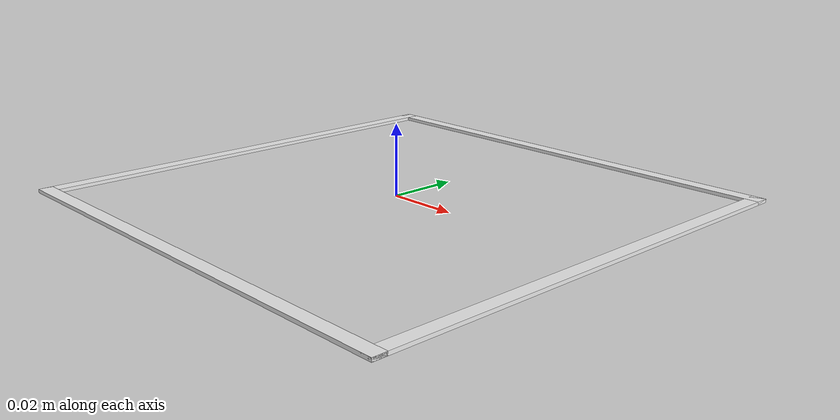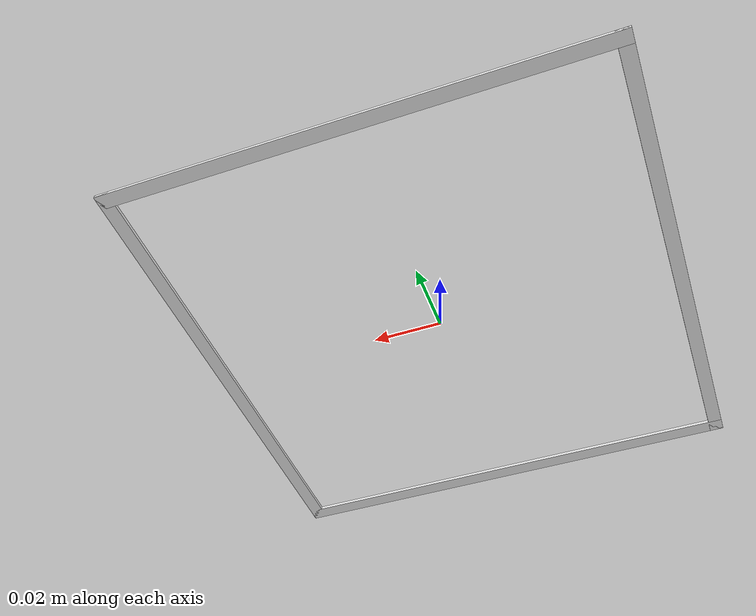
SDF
<?xml version="1.0"?>
<sdf version="1.6"><model name="zone_marker"><static>true</static><link name="marker">
  <visual name="north"><pose>0 0.068 0 0 0 0</pose><geometry><box><size>0.14 0.004 0.001</size></box></geometry><material><ambient>0.93 0.93 0.93 1</ambient><diffuse>0.93 0.93 0.93 1</diffuse></material></visual>
  <visual name="south"><pose>0 -0.068 0 0 0 0</pose><geometry><box><size>0.14 0.004 0.001</size></box></geometry><material><ambient>0.93 0.93 0.93 1</ambient><diffuse>0.93 0.93 0.93 1</diffuse></material></visual>
  <visual name="east"><pose>0.068 0 0 0 0 0</pose><geometry><box><size>0.004 0.14 0.001</size></box></geometry><material><ambient>0.93 0.93 0.93 1</ambient><diffuse>0.93 0.93 0.93 1</diffuse></material></visual>
  <visual name="west"><pose>-0.068 0 0 0 0 0</pose><geometry><box><size>0.004 0.14 0.001</size></box></geometry><material><ambient>0.93 0.93 0.93 1</ambient><diffuse>0.93 0.93 0.93 1</diffuse></material></visual>
</link></model></sdf>
